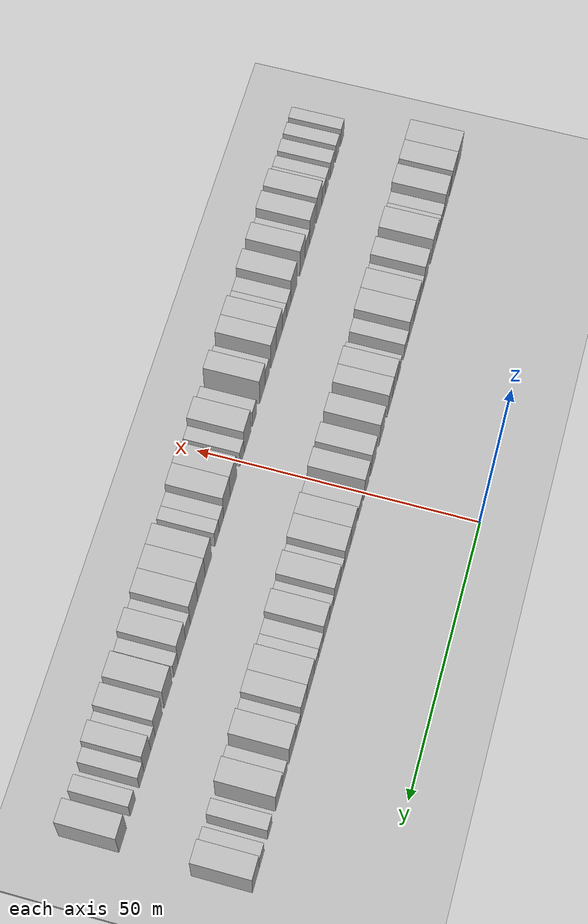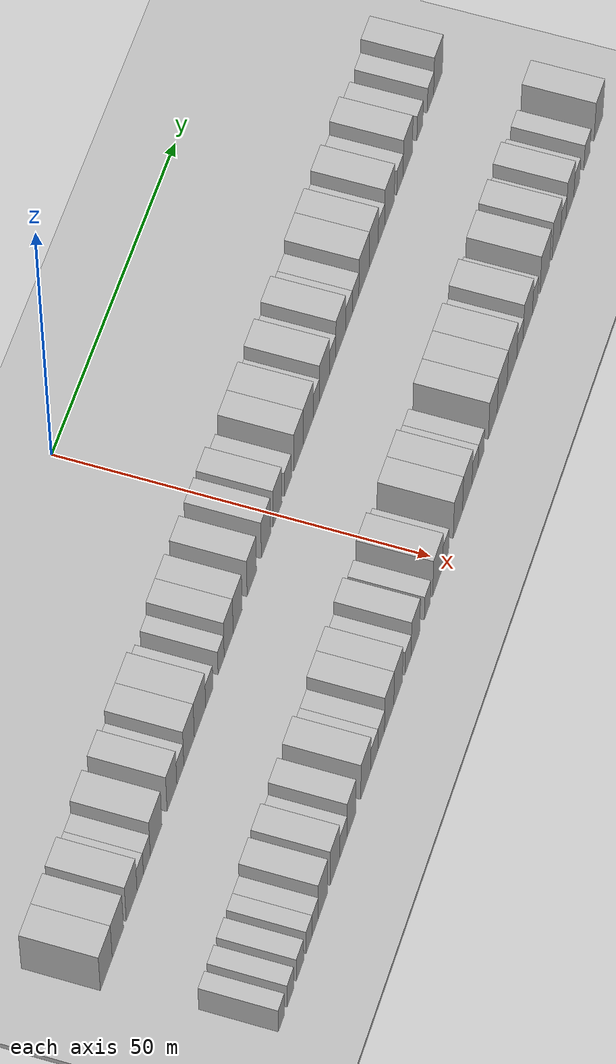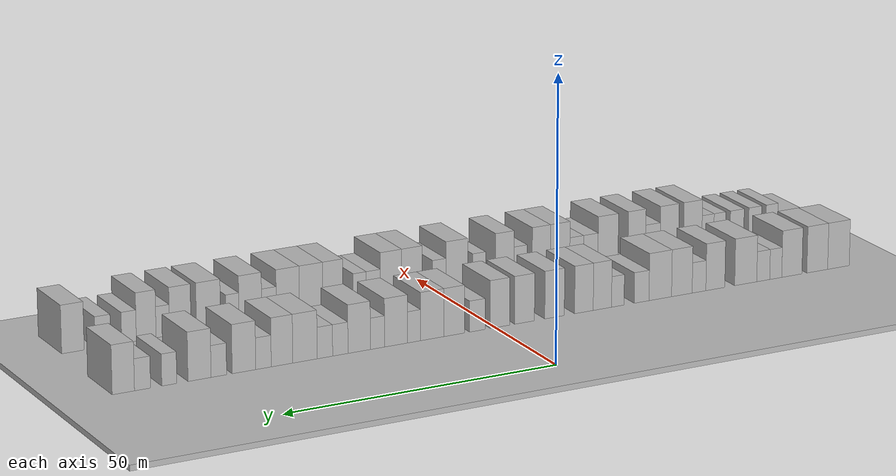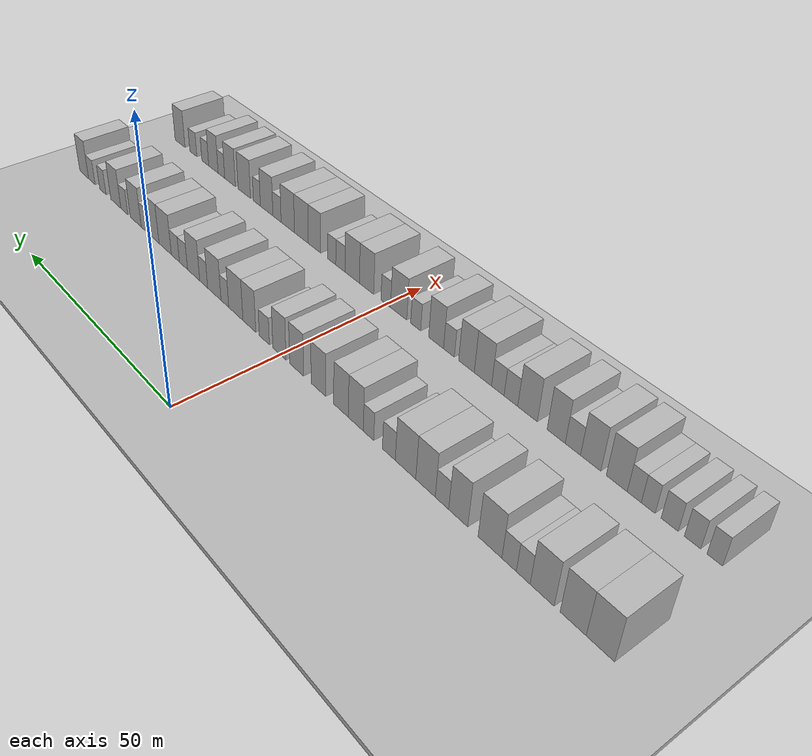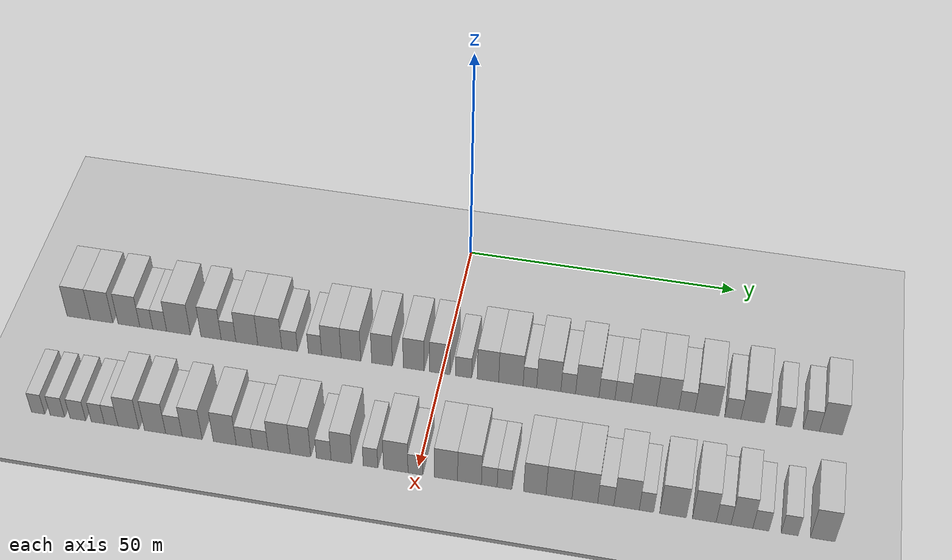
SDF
<sdf version="1.6">
 <world name="default">
  <include><name>ground_plane_1</name><uri>model://HANNAS_ground_plane</uri></include>
  <include>
   <name>ground_plane_2</name>
   <uri>model://HANNAS_ground_plane</uri>
   <pose>100 0 0  0 0 0</pose>
  </include>
  <model name="building_36">
   <static>1</static>
   <pose>25.0000 -67.8687 0 0.000000 0.000000 0.000000</pose>
   <link name="link">
    <pose>0 0 4.50 0 0 0</pose>
    <collision name="collision"><geometry><box><size>10.0000 4.4902 9.0000</size></box></geometry></collision>
    <visual name="visual">
     <cast_shadows>0</cast_shadows>
     <geometry><box><size>10.0000 4.4902 9.0000</size></box></geometry>
     <material>
      <script>
       <uri>model://HANNAS_wall/materials/scripts</uri>
       <uri>model://HANNAS_wall/materials/textures</uri>
       <name>vrc/HANNAS_wall</name>
      </script>
     </material>
    </visual>
   </link>
  </model>
  <model name="building_37">
   <static>1</static>
   <pose>25.0000 -63.4710 0 0.000000 0.000000 0.000000</pose>
   <link name="link">
    <pose>0 0 4.50 0 0 0</pose>
    <collision name="collision"><geometry><box><size>10.0000 4.3054 9.0000</size></box></geometry></collision>
    <visual name="visual">
     <cast_shadows>0</cast_shadows>
     <geometry><box><size>10.0000 4.3054 9.0000</size></box></geometry>
     <material>
      <script>
       <uri>model://HANNAS_wall/materials/scripts</uri>
       <uri>model://HANNAS_wall/materials/textures</uri>
       <name>vrc/HANNAS_wall</name>
      </script>
     </material>
    </visual>
   </link>
  </model>
  <model name="building_38">
   <static>1</static>
   <pose>25.0000 -58.2366 0 0.000000 0.000000 0.000000</pose>
   <link name="link">
    <pose>0 0 4.50 0 0 0</pose>
    <collision name="collision"><geometry><box><size>10.0000 4.1633 9.0000</size></box></geometry></collision>
    <visual name="visual">
     <cast_shadows>0</cast_shadows>
     <geometry><box><size>10.0000 4.1633 9.0000</size></box></geometry>
     <material>
      <script>
       <uri>model://HANNAS_wall/materials/scripts</uri>
       <uri>model://HANNAS_wall/materials/textures</uri>
       <name>vrc/HANNAS_wall</name>
      </script>
     </material>
    </visual>
   </link>
  </model>
  <model name="building_39">
   <static>1</static>
   <pose>25.0000 -54.9228 0 0.000000 0.000000 0.000000</pose>
   <link name="link">
    <pose>0 0 3.00 0 0 0</pose>
    <collision name="collision"><geometry><box><size>10.0000 2.4642 6.0000</size></box></geometry></collision>
    <visual name="visual">
     <cast_shadows>0</cast_shadows>
     <geometry><box><size>10.0000 2.4642 6.0000</size></box></geometry>
     <material>
      <script>
       <uri>model://HANNAS_wall/materials/scripts</uri>
       <uri>model://HANNAS_wall/materials/textures</uri>
       <name>vrc/HANNAS_wall</name>
      </script>
     </material>
    </visual>
   </link>
  </model>
  <model name="building_40">
   <static>1</static>
   <pose>25.0000 -52.3676 0 0.000000 0.000000 0.000000</pose>
   <link name="link">
    <pose>0 0 3.00 0 0 0</pose>
    <collision name="collision"><geometry><box><size>10.0000 2.6464 6.0000</size></box></geometry></collision>
    <visual name="visual">
     <cast_shadows>0</cast_shadows>
     <geometry><box><size>10.0000 2.6464 6.0000</size></box></geometry>
     <material>
      <script>
       <uri>model://HANNAS_wall/materials/scripts</uri>
       <uri>model://HANNAS_wall/materials/textures</uri>
       <name>vrc/HANNAS_wall</name>
      </script>
     </material>
    </visual>
   </link>
  </model>
  <model name="building_41">
   <static>1</static>
   <pose>25.0000 -48.7996 0 0.000000 0.000000 0.000000</pose>
   <link name="link">
    <pose>0 0 4.50 0 0 0</pose>
    <collision name="collision"><geometry><box><size>10.0000 4.4895 9.0000</size></box></geometry></collision>
    <visual name="visual">
     <cast_shadows>0</cast_shadows>
     <geometry><box><size>10.0000 4.4895 9.0000</size></box></geometry>
     <material>
      <script>
       <uri>model://HANNAS_wall/materials/scripts</uri>
       <uri>model://HANNAS_wall/materials/textures</uri>
       <name>vrc/HANNAS_wall</name>
      </script>
     </material>
    </visual>
   </link>
  </model>
  <model name="building_42">
   <static>1</static>
   <pose>25.0000 -42.6450 0 0.000000 0.000000 0.000000</pose>
   <link name="link">
    <pose>0 0 4.50 0 0 0</pose>
    <collision name="collision"><geometry><box><size>10.0000 3.8197 9.0000</size></box></geometry></collision>
    <visual name="visual">
     <cast_shadows>0</cast_shadows>
     <geometry><box><size>10.0000 3.8197 9.0000</size></box></geometry>
     <material>
      <script>
       <uri>model://HANNAS_wall/materials/scripts</uri>
       <uri>model://HANNAS_wall/materials/textures</uri>
       <name>vrc/HANNAS_wall</name>
      </script>
     </material>
    </visual>
   </link>
  </model>
  <model name="building_43">
   <static>1</static>
   <pose>25.0000 -39.3544 0 0.000000 0.000000 0.000000</pose>
   <link name="link">
    <pose>0 0 3.00 0 0 0</pose>
    <collision name="collision"><geometry><box><size>10.0000 2.7616 6.0000</size></box></geometry></collision>
    <visual name="visual">
     <cast_shadows>0</cast_shadows>
     <geometry><box><size>10.0000 2.7616 6.0000</size></box></geometry>
     <material>
      <script>
       <uri>model://HANNAS_wall/materials/scripts</uri>
       <uri>model://HANNAS_wall/materials/textures</uri>
       <name>vrc/HANNAS_wall</name>
      </script>
     </material>
    </visual>
   </link>
  </model>
  <model name="building_44">
   <static>1</static>
   <pose>25.0000 -35.9110 0 0.000000 0.000000 0.000000</pose>
   <link name="link">
    <pose>0 0 4.50 0 0 0</pose>
    <collision name="collision"><geometry><box><size>10.0000 4.1252 9.0000</size></box></geometry></collision>
    <visual name="visual">
     <cast_shadows>0</cast_shadows>
     <geometry><box><size>10.0000 4.1252 9.0000</size></box></geometry>
     <material>
      <script>
       <uri>model://HANNAS_wall/materials/scripts</uri>
       <uri>model://HANNAS_wall/materials/textures</uri>
       <name>vrc/HANNAS_wall</name>
      </script>
     </material>
    </visual>
   </link>
  </model>
  <model name="building_45">
   <static>1</static>
   <pose>25.0000 -31.6001 0 0.000000 0.000000 0.000000</pose>
   <link name="link">
    <pose>0 0 4.50 0 0 0</pose>
    <collision name="collision"><geometry><box><size>10.0000 4.4965 9.0000</size></box></geometry></collision>
    <visual name="visual">
     <cast_shadows>0</cast_shadows>
     <geometry><box><size>10.0000 4.4965 9.0000</size></box></geometry>
     <material>
      <script>
       <uri>model://HANNAS_wall/materials/scripts</uri>
       <uri>model://HANNAS_wall/materials/textures</uri>
       <name>vrc/HANNAS_wall</name>
      </script>
     </material>
    </visual>
   </link>
  </model>
  <model name="building_46">
   <static>1</static>
   <pose>25.0000 -27.8859 0 0.000000 0.000000 0.000000</pose>
   <link name="link">
    <pose>0 0 3.00 0 0 0</pose>
    <collision name="collision"><geometry><box><size>10.0000 2.9319 6.0000</size></box></geometry></collision>
    <visual name="visual">
     <cast_shadows>0</cast_shadows>
     <geometry><box><size>10.0000 2.9319 6.0000</size></box></geometry>
     <material>
      <script>
       <uri>model://HANNAS_wall/materials/scripts</uri>
       <uri>model://HANNAS_wall/materials/textures</uri>
       <name>vrc/HANNAS_wall</name>
      </script>
     </material>
    </visual>
   </link>
  </model>
  <model name="building_47">
   <static>1</static>
   <pose>25.0000 -23.1822 0 0.000000 0.000000 0.000000</pose>
   <link name="link">
    <pose>0 0 3.00 0 0 0</pose>
    <collision name="collision"><geometry><box><size>10.0000 2.4754 6.0000</size></box></geometry></collision>
    <visual name="visual">
     <cast_shadows>0</cast_shadows>
     <geometry><box><size>10.0000 2.4754 6.0000</size></box></geometry>
     <material>
      <script>
       <uri>model://HANNAS_wall/materials/scripts</uri>
       <uri>model://HANNAS_wall/materials/textures</uri>
       <name>vrc/HANNAS_wall</name>
      </script>
     </material>
    </visual>
   </link>
  </model>
  <model name="building_48">
   <static>1</static>
   <pose>25.0000 -20.1401 0 0.000000 0.000000 0.000000</pose>
   <link name="link">
    <pose>0 0 4.50 0 0 0</pose>
    <collision name="collision"><geometry><box><size>10.0000 3.6088 9.0000</size></box></geometry></collision>
    <visual name="visual">
     <cast_shadows>0</cast_shadows>
     <geometry><box><size>10.0000 3.6088 9.0000</size></box></geometry>
     <material>
      <script>
       <uri>model://HANNAS_wall/materials/scripts</uri>
       <uri>model://HANNAS_wall/materials/textures</uri>
       <name>vrc/HANNAS_wall</name>
      </script>
     </material>
    </visual>
   </link>
  </model>
  <model name="building_49">
   <static>1</static>
   <pose>25.0000 -16.5165 0 0.000000 0.000000 0.000000</pose>
   <link name="link">
    <pose>0 0 4.50 0 0 0</pose>
    <collision name="collision"><geometry><box><size>10.0000 3.6384 9.0000</size></box></geometry></collision>
    <visual name="visual">
     <cast_shadows>0</cast_shadows>
     <geometry><box><size>10.0000 3.6384 9.0000</size></box></geometry>
     <material>
      <script>
       <uri>model://HANNAS_wall/materials/scripts</uri>
       <uri>model://HANNAS_wall/materials/textures</uri>
       <name>vrc/HANNAS_wall</name>
      </script>
     </material>
    </visual>
   </link>
  </model>
  <model name="building_50">
   <static>1</static>
   <pose>25.0000 -10.7964 0 0.000000 0.000000 0.000000</pose>
   <link name="link">
    <pose>0 0 4.50 0 0 0</pose>
    <collision name="collision"><geometry><box><size>10.0000 3.8018 9.0000</size></box></geometry></collision>
    <visual name="visual">
     <cast_shadows>0</cast_shadows>
     <geometry><box><size>10.0000 3.8018 9.0000</size></box></geometry>
     <material>
      <script>
       <uri>model://HANNAS_wall/materials/scripts</uri>
       <uri>model://HANNAS_wall/materials/textures</uri>
       <name>vrc/HANNAS_wall</name>
      </script>
     </material>
    </visual>
   </link>
  </model>
  <model name="building_51">
   <static>1</static>
   <pose>25.0000 -4.9890 0 0.000000 0.000000 0.000000</pose>
   <link name="link">
    <pose>0 0 4.50 0 0 0</pose>
    <collision name="collision"><geometry><box><size>10.0000 3.8128 9.0000</size></box></geometry></collision>
    <visual name="visual">
     <cast_shadows>0</cast_shadows>
     <geometry><box><size>10.0000 3.8128 9.0000</size></box></geometry>
     <material>
      <script>
       <uri>model://HANNAS_wall/materials/scripts</uri>
       <uri>model://HANNAS_wall/materials/textures</uri>
       <name>vrc/HANNAS_wall</name>
      </script>
     </material>
    </visual>
   </link>
  </model>
  <model name="building_52">
   <static>1</static>
   <pose>25.0000 -0.2341 0 0.000000 0.000000 0.000000</pose>
   <link name="link">
    <pose>0 0 4.50 0 0 0</pose>
    <collision name="collision"><geometry><box><size>10.0000 3.6971 9.0000</size></box></geometry></collision>
    <visual name="visual">
     <cast_shadows>0</cast_shadows>
     <geometry><box><size>10.0000 3.6971 9.0000</size></box></geometry>
     <material>
      <script>
       <uri>model://HANNAS_wall/materials/scripts</uri>
       <uri>model://HANNAS_wall/materials/textures</uri>
       <name>vrc/HANNAS_wall</name>
      </script>
     </material>
    </visual>
   </link>
  </model>
  <model name="building_53">
   <static>1</static>
   <pose>25.0000 4.0832 0 0.000000 0.000000 0.000000</pose>
   <link name="link">
    <pose>0 0 3.00 0 0 0</pose>
    <collision name="collision"><geometry><box><size>10.0000 2.9375 6.0000</size></box></geometry></collision>
    <visual name="visual">
     <cast_shadows>0</cast_shadows>
     <geometry><box><size>10.0000 2.9375 6.0000</size></box></geometry>
     <material>
      <script>
       <uri>model://HANNAS_wall/materials/scripts</uri>
       <uri>model://HANNAS_wall/materials/textures</uri>
       <name>vrc/HANNAS_wall</name>
      </script>
     </material>
    </visual>
   </link>
  </model>
  <model name="building_54">
   <static>1</static>
   <pose>25.0000 8.4924 0 0.000000 0.000000 0.000000</pose>
   <link name="link">
    <pose>0 0 4.50 0 0 0</pose>
    <collision name="collision"><geometry><box><size>10.0000 3.8807 9.0000</size></box></geometry></collision>
    <visual name="visual">
     <cast_shadows>0</cast_shadows>
     <geometry><box><size>10.0000 3.8807 9.0000</size></box></geometry>
     <material>
      <script>
       <uri>model://HANNAS_wall/materials/scripts</uri>
       <uri>model://HANNAS_wall/materials/textures</uri>
       <name>vrc/HANNAS_wall</name>
      </script>
     </material>
    </visual>
   </link>
  </model>
  <model name="building_55">
   <static>1</static>
   <pose>25.0000 12.6406 0 0.000000 0.000000 0.000000</pose>
   <link name="link">
    <pose>0 0 4.50 0 0 0</pose>
    <collision name="collision"><geometry><box><size>10.0000 4.4157 9.0000</size></box></geometry></collision>
    <visual name="visual">
     <cast_shadows>0</cast_shadows>
     <geometry><box><size>10.0000 4.4157 9.0000</size></box></geometry>
     <material>
      <script>
       <uri>model://HANNAS_wall/materials/scripts</uri>
       <uri>model://HANNAS_wall/materials/textures</uri>
       <name>vrc/HANNAS_wall</name>
      </script>
     </material>
    </visual>
   </link>
  </model>
  <model name="building_56">
   <static>1</static>
   <pose>25.0000 16.0649 0 0.000000 0.000000 0.000000</pose>
   <link name="link">
    <pose>0 0 3.00 0 0 0</pose>
    <collision name="collision"><geometry><box><size>10.0000 2.4328 6.0000</size></box></geometry></collision>
    <visual name="visual">
     <cast_shadows>0</cast_shadows>
     <geometry><box><size>10.0000 2.4328 6.0000</size></box></geometry>
     <material>
      <script>
       <uri>model://HANNAS_wall/materials/scripts</uri>
       <uri>model://HANNAS_wall/materials/textures</uri>
       <name>vrc/HANNAS_wall</name>
      </script>
     </material>
    </visual>
   </link>
  </model>
  <model name="building_57">
   <static>1</static>
   <pose>25.0000 19.4465 0 0.000000 0.000000 0.000000</pose>
   <link name="link">
    <pose>0 0 4.50 0 0 0</pose>
    <collision name="collision"><geometry><box><size>10.0000 4.3304 9.0000</size></box></geometry></collision>
    <visual name="visual">
     <cast_shadows>0</cast_shadows>
     <geometry><box><size>10.0000 4.3304 9.0000</size></box></geometry>
     <material>
      <script>
       <uri>model://HANNAS_wall/materials/scripts</uri>
       <uri>model://HANNAS_wall/materials/textures</uri>
       <name>vrc/HANNAS_wall</name>
      </script>
     </material>
    </visual>
   </link>
  </model>
  <model name="building_58">
   <static>1</static>
   <pose>25.0000 22.9287 0 0.000000 0.000000 0.000000</pose>
   <link name="link">
    <pose>0 0 3.00 0 0 0</pose>
    <collision name="collision"><geometry><box><size>10.0000 2.6340 6.0000</size></box></geometry></collision>
    <visual name="visual">
     <cast_shadows>0</cast_shadows>
     <geometry><box><size>10.0000 2.6340 6.0000</size></box></geometry>
     <material>
      <script>
       <uri>model://HANNAS_wall/materials/scripts</uri>
       <uri>model://HANNAS_wall/materials/textures</uri>
       <name>vrc/HANNAS_wall</name>
      </script>
     </material>
    </visual>
   </link>
  </model>
  <model name="building_59">
   <static>1</static>
   <pose>25.0000 26.3239 0 0.000000 0.000000 0.000000</pose>
   <link name="link">
    <pose>0 0 4.50 0 0 0</pose>
    <collision name="collision"><geometry><box><size>10.0000 4.1565 9.0000</size></box></geometry></collision>
    <visual name="visual">
     <cast_shadows>0</cast_shadows>
     <geometry><box><size>10.0000 4.1565 9.0000</size></box></geometry>
     <material>
      <script>
       <uri>model://HANNAS_wall/materials/scripts</uri>
       <uri>model://HANNAS_wall/materials/textures</uri>
       <name>vrc/HANNAS_wall</name>
      </script>
     </material>
    </visual>
   </link>
  </model>
  <model name="building_60">
   <static>1</static>
   <pose>25.0000 29.8214 0 0.000000 0.000000 0.000000</pose>
   <link name="link">
    <pose>0 0 3.00 0 0 0</pose>
    <collision name="collision"><geometry><box><size>10.0000 2.8384 6.0000</size></box></geometry></collision>
    <visual name="visual">
     <cast_shadows>0</cast_shadows>
     <geometry><box><size>10.0000 2.8384 6.0000</size></box></geometry>
     <material>
      <script>
       <uri>model://HANNAS_wall/materials/scripts</uri>
       <uri>model://HANNAS_wall/materials/textures</uri>
       <name>vrc/HANNAS_wall</name>
      </script>
     </material>
    </visual>
   </link>
  </model>
  <model name="building_61">
   <static>1</static>
   <pose>25.0000 32.6655 0 0.000000 0.000000 0.000000</pose>
   <link name="link">
    <pose>0 0 3.00 0 0 0</pose>
    <collision name="collision"><geometry><box><size>10.0000 2.8499 6.0000</size></box></geometry></collision>
    <visual name="visual">
     <cast_shadows>0</cast_shadows>
     <geometry><box><size>10.0000 2.8499 6.0000</size></box></geometry>
     <material>
      <script>
       <uri>model://HANNAS_wall/materials/scripts</uri>
       <uri>model://HANNAS_wall/materials/textures</uri>
       <name>vrc/HANNAS_wall</name>
      </script>
     </material>
    </visual>
   </link>
  </model>
  <model name="building_62">
   <static>1</static>
   <pose>25.0000 36.3310 0 0.000000 0.000000 0.000000</pose>
   <link name="link">
    <pose>0 0 4.50 0 0 0</pose>
    <collision name="collision"><geometry><box><size>10.0000 4.4812 9.0000</size></box></geometry></collision>
    <visual name="visual">
     <cast_shadows>0</cast_shadows>
     <geometry><box><size>10.0000 4.4812 9.0000</size></box></geometry>
     <material>
      <script>
       <uri>model://HANNAS_wall/materials/scripts</uri>
       <uri>model://HANNAS_wall/materials/textures</uri>
       <name>vrc/HANNAS_wall</name>
      </script>
     </material>
    </visual>
   </link>
  </model>
  <model name="building_63">
   <static>1</static>
   <pose>25.0000 40.5339 0 0.000000 0.000000 0.000000</pose>
   <link name="link">
    <pose>0 0 4.50 0 0 0</pose>
    <collision name="collision"><geometry><box><size>10.0000 3.9246 9.0000</size></box></geometry></collision>
    <visual name="visual">
     <cast_shadows>0</cast_shadows>
     <geometry><box><size>10.0000 3.9246 9.0000</size></box></geometry>
     <material>
      <script>
       <uri>model://HANNAS_wall/materials/scripts</uri>
       <uri>model://HANNAS_wall/materials/textures</uri>
       <name>vrc/HANNAS_wall</name>
      </script>
     </material>
    </visual>
   </link>
  </model>
  <model name="building_64">
   <static>1</static>
   <pose>25.0000 43.9046 0 0.000000 0.000000 0.000000</pose>
   <link name="link">
    <pose>0 0 3.00 0 0 0</pose>
    <collision name="collision"><geometry><box><size>10.0000 2.8168 6.0000</size></box></geometry></collision>
    <visual name="visual">
     <cast_shadows>0</cast_shadows>
     <geometry><box><size>10.0000 2.8168 6.0000</size></box></geometry>
     <material>
      <script>
       <uri>model://HANNAS_wall/materials/scripts</uri>
       <uri>model://HANNAS_wall/materials/textures</uri>
       <name>vrc/HANNAS_wall</name>
      </script>
     </material>
    </visual>
   </link>
  </model>
  <model name="building_65">
   <static>1</static>
   <pose>25.0000 47.4456 0 0.000000 0.000000 0.000000</pose>
   <link name="link">
    <pose>0 0 4.50 0 0 0</pose>
    <collision name="collision"><geometry><box><size>10.0000 4.2652 9.0000</size></box></geometry></collision>
    <visual name="visual">
     <cast_shadows>0</cast_shadows>
     <geometry><box><size>10.0000 4.2652 9.0000</size></box></geometry>
     <material>
      <script>
       <uri>model://HANNAS_wall/materials/scripts</uri>
       <uri>model://HANNAS_wall/materials/textures</uri>
       <name>vrc/HANNAS_wall</name>
      </script>
     </material>
    </visual>
   </link>
  </model>
  <model name="building_66">
   <static>1</static>
   <pose>25.0000 51.9770 0 0.000000 0.000000 0.000000</pose>
   <link name="link">
    <pose>0 0 3.00 0 0 0</pose>
    <collision name="collision"><geometry><box><size>10.0000 2.7976 6.0000</size></box></geometry></collision>
    <visual name="visual">
     <cast_shadows>0</cast_shadows>
     <geometry><box><size>10.0000 2.7976 6.0000</size></box></geometry>
     <material>
      <script>
       <uri>model://HANNAS_wall/materials/scripts</uri>
       <uri>model://HANNAS_wall/materials/textures</uri>
       <name>vrc/HANNAS_wall</name>
      </script>
     </material>
    </visual>
   </link>
  </model>
  <model name="building_67">
   <static>1</static>
   <pose>25.0000 55.4416 0 0.000000 0.000000 0.000000</pose>
   <link name="link">
    <pose>0 0 4.50 0 0 0</pose>
    <collision name="collision"><geometry><box><size>10.0000 4.1315 9.0000</size></box></geometry></collision>
    <visual name="visual">
     <cast_shadows>0</cast_shadows>
     <geometry><box><size>10.0000 4.1315 9.0000</size></box></geometry>
     <material>
      <script>
       <uri>model://HANNAS_wall/materials/scripts</uri>
       <uri>model://HANNAS_wall/materials/textures</uri>
       <name>vrc/HANNAS_wall</name>
      </script>
     </material>
    </visual>
   </link>
  </model>
  <model name="building_68">
   <static>1</static>
   <pose>25.0000 60.8428 0 0.000000 0.000000 0.000000</pose>
   <link name="link">
    <pose>0 0 3.00 0 0 0</pose>
    <collision name="collision"><geometry><box><size>10.0000 2.6708 6.0000</size></box></geometry></collision>
    <visual name="visual">
     <cast_shadows>0</cast_shadows>
     <geometry><box><size>10.0000 2.6708 6.0000</size></box></geometry>
     <material>
      <script>
       <uri>model://HANNAS_wall/materials/scripts</uri>
       <uri>model://HANNAS_wall/materials/textures</uri>
       <name>vrc/HANNAS_wall</name>
      </script>
     </material>
    </visual>
   </link>
  </model>
  <model name="building_69">
   <static>1</static>
   <pose>25.0000 65.5975 0 0.000000 0.000000 0.000000</pose>
   <link name="link">
    <pose>0 0 3.00 0 0 0</pose>
    <collision name="collision"><geometry><box><size>10.0000 2.8386 6.0000</size></box></geometry></collision>
    <visual name="visual">
     <cast_shadows>0</cast_shadows>
     <geometry><box><size>10.0000 2.8386 6.0000</size></box></geometry>
     <material>
      <script>
       <uri>model://HANNAS_wall/materials/scripts</uri>
       <uri>model://HANNAS_wall/materials/textures</uri>
       <name>vrc/HANNAS_wall</name>
      </script>
     </material>
    </visual>
   </link>
  </model>
  <model name="building_70">
   <static>1</static>
   <pose>25.0000 68.9816 0 0.000000 0.000000 0.000000</pose>
   <link name="link">
    <pose>0 0 4.50 0 0 0</pose>
    <collision name="collision"><geometry><box><size>10.0000 3.9295 9.0000</size></box></geometry></collision>
    <visual name="visual">
     <cast_shadows>0</cast_shadows>
     <geometry><box><size>10.0000 3.9295 9.0000</size></box></geometry>
     <material>
      <script>
       <uri>model://HANNAS_wall/materials/scripts</uri>
       <uri>model://HANNAS_wall/materials/textures</uri>
       <name>vrc/HANNAS_wall</name>
      </script>
     </material>
    </visual>
   </link>
  </model>
  <model name="building_142">
   <static>1</static>
   <pose>47.0000 -67.7369 0 0.000000 0.000000 0.000000</pose>
   <link name="link">
    <pose>0 0 3.00 0 0 0</pose>
    <collision name="collision"><geometry><box><size>10.0000 2.4521 6.0000</size></box></geometry></collision>
    <visual name="visual">
     <cast_shadows>0</cast_shadows>
     <geometry><box><size>10.0000 2.4521 6.0000</size></box></geometry>
     <material>
      <script>
       <uri>model://HANNAS_wall/materials/scripts</uri>
       <uri>model://HANNAS_wall/materials/textures</uri>
       <name>vrc/HANNAS_wall</name>
      </script>
     </material>
    </visual>
   </link>
  </model>
  <model name="building_143">
   <static>1</static>
   <pose>47.0000 -64.1834 0 0.000000 0.000000 0.000000</pose>
   <link name="link">
    <pose>0 0 3.00 0 0 0</pose>
    <collision name="collision"><geometry><box><size>10.0000 2.6549 6.0000</size></box></geometry></collision>
    <visual name="visual">
     <cast_shadows>0</cast_shadows>
     <geometry><box><size>10.0000 2.6549 6.0000</size></box></geometry>
     <material>
      <script>
       <uri>model://HANNAS_wall/materials/scripts</uri>
       <uri>model://HANNAS_wall/materials/textures</uri>
       <name>vrc/HANNAS_wall</name>
      </script>
     </material>
    </visual>
   </link>
  </model>
  <model name="building_144">
   <static>1</static>
   <pose>47.0000 -60.4204 0 0.000000 0.000000 0.000000</pose>
   <link name="link">
    <pose>0 0 3.00 0 0 0</pose>
    <collision name="collision"><geometry><box><size>10.0000 2.8710 6.0000</size></box></geometry></collision>
    <visual name="visual">
     <cast_shadows>0</cast_shadows>
     <geometry><box><size>10.0000 2.8710 6.0000</size></box></geometry>
     <material>
      <script>
       <uri>model://HANNAS_wall/materials/scripts</uri>
       <uri>model://HANNAS_wall/materials/textures</uri>
       <name>vrc/HANNAS_wall</name>
      </script>
     </material>
    </visual>
   </link>
  </model>
  <model name="building_145">
   <static>1</static>
   <pose>47.0000 -56.7845 0 0.000000 0.000000 0.000000</pose>
   <link name="link">
    <pose>0 0 3.00 0 0 0</pose>
    <collision name="collision"><geometry><box><size>10.0000 2.4008 6.0000</size></box></geometry></collision>
    <visual name="visual">
     <cast_shadows>0</cast_shadows>
     <geometry><box><size>10.0000 2.4008 6.0000</size></box></geometry>
     <material>
      <script>
       <uri>model://HANNAS_wall/materials/scripts</uri>
       <uri>model://HANNAS_wall/materials/textures</uri>
       <name>vrc/HANNAS_wall</name>
      </script>
     </material>
    </visual>
   </link>
  </model>
  <model name="building_146">
   <static>1</static>
   <pose>47.0000 -54.3425 0 0.000000 0.000000 0.000000</pose>
   <link name="link">
    <pose>0 0 3.00 0 0 0</pose>
    <collision name="collision"><geometry><box><size>10.0000 2.4832 6.0000</size></box></geometry></collision>
    <visual name="visual">
     <cast_shadows>0</cast_shadows>
     <geometry><box><size>10.0000 2.4832 6.0000</size></box></geometry>
     <material>
      <script>
       <uri>model://HANNAS_wall/materials/scripts</uri>
       <uri>model://HANNAS_wall/materials/textures</uri>
       <name>vrc/HANNAS_wall</name>
      </script>
     </material>
    </visual>
   </link>
  </model>
  <model name="building_147">
   <static>1</static>
   <pose>47.0000 -51.2014 0 0.000000 0.000000 0.000000</pose>
   <link name="link">
    <pose>0 0 4.50 0 0 0</pose>
    <collision name="collision"><geometry><box><size>10.0000 3.7991 9.0000</size></box></geometry></collision>
    <visual name="visual">
     <cast_shadows>0</cast_shadows>
     <geometry><box><size>10.0000 3.7991 9.0000</size></box></geometry>
     <material>
      <script>
       <uri>model://HANNAS_wall/materials/scripts</uri>
       <uri>model://HANNAS_wall/materials/textures</uri>
       <name>vrc/HANNAS_wall</name>
      </script>
     </material>
    </visual>
   </link>
  </model>
  <model name="building_148">
   <static>1</static>
   <pose>47.0000 -46.3826 0 0.000000 0.000000 0.000000</pose>
   <link name="link">
    <pose>0 0 4.50 0 0 0</pose>
    <collision name="collision"><geometry><box><size>10.0000 3.8384 9.0000</size></box></geometry></collision>
    <visual name="visual">
     <cast_shadows>0</cast_shadows>
     <geometry><box><size>10.0000 3.8384 9.0000</size></box></geometry>
     <material>
      <script>
       <uri>model://HANNAS_wall/materials/scripts</uri>
       <uri>model://HANNAS_wall/materials/textures</uri>
       <name>vrc/HANNAS_wall</name>
      </script>
     </material>
    </visual>
   </link>
  </model>
  <model name="building_149">
   <static>1</static>
   <pose>47.0000 -42.9770 0 0.000000 0.000000 0.000000</pose>
   <link name="link">
    <pose>0 0 3.00 0 0 0</pose>
    <collision name="collision"><geometry><box><size>10.0000 2.9728 6.0000</size></box></geometry></collision>
    <visual name="visual">
     <cast_shadows>0</cast_shadows>
     <geometry><box><size>10.0000 2.9728 6.0000</size></box></geometry>
     <material>
      <script>
       <uri>model://HANNAS_wall/materials/scripts</uri>
       <uri>model://HANNAS_wall/materials/textures</uri>
       <name>vrc/HANNAS_wall</name>
      </script>
     </material>
    </visual>
   </link>
  </model>
  <model name="building_150">
   <static>1</static>
   <pose>47.0000 -39.6873 0 0.000000 0.000000 0.000000</pose>
   <link name="link">
    <pose>0 0 4.50 0 0 0</pose>
    <collision name="collision"><geometry><box><size>10.0000 3.6066 9.0000</size></box></geometry></collision>
    <visual name="visual">
     <cast_shadows>0</cast_shadows>
     <geometry><box><size>10.0000 3.6066 9.0000</size></box></geometry>
     <material>
      <script>
       <uri>model://HANNAS_wall/materials/scripts</uri>
       <uri>model://HANNAS_wall/materials/textures</uri>
       <name>vrc/HANNAS_wall</name>
      </script>
     </material>
    </visual>
   </link>
  </model>
  <model name="building_151">
   <static>1</static>
   <pose>47.0000 -33.8355 0 0.000000 0.000000 0.000000</pose>
   <link name="link">
    <pose>0 0 4.50 0 0 0</pose>
    <collision name="collision"><geometry><box><size>10.0000 4.0971 9.0000</size></box></geometry></collision>
    <visual name="visual">
     <cast_shadows>0</cast_shadows>
     <geometry><box><size>10.0000 4.0971 9.0000</size></box></geometry>
     <material>
      <script>
       <uri>model://HANNAS_wall/materials/scripts</uri>
       <uri>model://HANNAS_wall/materials/textures</uri>
       <name>vrc/HANNAS_wall</name>
      </script>
     </material>
    </visual>
   </link>
  </model>
  <model name="building_152">
   <static>1</static>
   <pose>47.0000 -30.3197 0 0.000000 0.000000 0.000000</pose>
   <link name="link">
    <pose>0 0 3.00 0 0 0</pose>
    <collision name="collision"><geometry><box><size>10.0000 2.9346 6.0000</size></box></geometry></collision>
    <visual name="visual">
     <cast_shadows>0</cast_shadows>
     <geometry><box><size>10.0000 2.9346 6.0000</size></box></geometry>
     <material>
      <script>
       <uri>model://HANNAS_wall/materials/scripts</uri>
       <uri>model://HANNAS_wall/materials/textures</uri>
       <name>vrc/HANNAS_wall</name>
      </script>
     </material>
    </visual>
   </link>
  </model>
  <model name="building_153">
   <static>1</static>
   <pose>47.0000 -27.4698 0 0.000000 0.000000 0.000000</pose>
   <link name="link">
    <pose>0 0 3.00 0 0 0</pose>
    <collision name="collision"><geometry><box><size>10.0000 2.7652 6.0000</size></box></geometry></collision>
    <visual name="visual">
     <cast_shadows>0</cast_shadows>
     <geometry><box><size>10.0000 2.7652 6.0000</size></box></geometry>
     <material>
      <script>
       <uri>model://HANNAS_wall/materials/scripts</uri>
       <uri>model://HANNAS_wall/materials/textures</uri>
       <name>vrc/HANNAS_wall</name>
      </script>
     </material>
    </visual>
   </link>
  </model>
  <model name="building_154">
   <static>1</static>
   <pose>47.0000 -24.1375 0 0.000000 0.000000 0.000000</pose>
   <link name="link">
    <pose>0 0 4.50 0 0 0</pose>
    <collision name="collision"><geometry><box><size>10.0000 3.8993 9.0000</size></box></geometry></collision>
    <visual name="visual">
     <cast_shadows>0</cast_shadows>
     <geometry><box><size>10.0000 3.8993 9.0000</size></box></geometry>
     <material>
      <script>
       <uri>model://HANNAS_wall/materials/scripts</uri>
       <uri>model://HANNAS_wall/materials/textures</uri>
       <name>vrc/HANNAS_wall</name>
      </script>
     </material>
    </visual>
   </link>
  </model>
  <model name="building_155">
   <static>1</static>
   <pose>47.0000 -20.3730 0 0.000000 0.000000 0.000000</pose>
   <link name="link">
    <pose>0 0 4.50 0 0 0</pose>
    <collision name="collision"><geometry><box><size>10.0000 3.6299 9.0000</size></box></geometry></collision>
    <visual name="visual">
     <cast_shadows>0</cast_shadows>
     <geometry><box><size>10.0000 3.6299 9.0000</size></box></geometry>
     <material>
      <script>
       <uri>model://HANNAS_wall/materials/scripts</uri>
       <uri>model://HANNAS_wall/materials/textures</uri>
       <name>vrc/HANNAS_wall</name>
      </script>
     </material>
    </visual>
   </link>
  </model>
  <model name="building_156">
   <static>1</static>
   <pose>47.0000 -16.2571 0 0.000000 0.000000 0.000000</pose>
   <link name="link">
    <pose>0 0 3.00 0 0 0</pose>
    <collision name="collision"><geometry><box><size>10.0000 2.6019 6.0000</size></box></geometry></collision>
    <visual name="visual">
     <cast_shadows>0</cast_shadows>
     <geometry><box><size>10.0000 2.6019 6.0000</size></box></geometry>
     <material>
      <script>
       <uri>model://HANNAS_wall/materials/scripts</uri>
       <uri>model://HANNAS_wall/materials/textures</uri>
       <name>vrc/HANNAS_wall</name>
      </script>
     </material>
    </visual>
   </link>
  </model>
  <model name="building_157">
   <static>1</static>
   <pose>47.0000 -13.1342 0 0.000000 0.000000 0.000000</pose>
   <link name="link">
    <pose>0 0 4.50 0 0 0</pose>
    <collision name="collision"><geometry><box><size>10.0000 3.6439 9.0000</size></box></geometry></collision>
    <visual name="visual">
     <cast_shadows>0</cast_shadows>
     <geometry><box><size>10.0000 3.6439 9.0000</size></box></geometry>
     <material>
      <script>
       <uri>model://HANNAS_wall/materials/scripts</uri>
       <uri>model://HANNAS_wall/materials/textures</uri>
       <name>vrc/HANNAS_wall</name>
      </script>
     </material>
    </visual>
   </link>
  </model>
  <model name="building_158">
   <static>1</static>
   <pose>47.0000 -8.0393 0 0.000000 0.000000 0.000000</pose>
   <link name="link">
    <pose>0 0 3.00 0 0 0</pose>
    <collision name="collision"><geometry><box><size>10.0000 2.5459 6.0000</size></box></geometry></collision>
    <visual name="visual">
     <cast_shadows>0</cast_shadows>
     <geometry><box><size>10.0000 2.5459 6.0000</size></box></geometry>
     <material>
      <script>
       <uri>model://HANNAS_wall/materials/scripts</uri>
       <uri>model://HANNAS_wall/materials/textures</uri>
       <name>vrc/HANNAS_wall</name>
      </script>
     </material>
    </visual>
   </link>
  </model>
  <model name="building_159">
   <static>1</static>
   <pose>47.0000 -3.6386 0 0.000000 0.000000 0.000000</pose>
   <link name="link">
    <pose>0 0 4.50 0 0 0</pose>
    <collision name="collision"><geometry><box><size>10.0000 4.2554 9.0000</size></box></geometry></collision>
    <visual name="visual">
     <cast_shadows>0</cast_shadows>
     <geometry><box><size>10.0000 4.2554 9.0000</size></box></geometry>
     <material>
      <script>
       <uri>model://HANNAS_wall/materials/scripts</uri>
       <uri>model://HANNAS_wall/materials/textures</uri>
       <name>vrc/HANNAS_wall</name>
      </script>
     </material>
    </visual>
   </link>
  </model>
  <model name="building_160">
   <static>1</static>
   <pose>47.0000 -0.2160 0 0.000000 0.000000 0.000000</pose>
   <link name="link">
    <pose>0 0 3.00 0 0 0</pose>
    <collision name="collision"><geometry><box><size>10.0000 2.5899 6.0000</size></box></geometry></collision>
    <visual name="visual">
     <cast_shadows>0</cast_shadows>
     <geometry><box><size>10.0000 2.5899 6.0000</size></box></geometry>
     <material>
      <script>
       <uri>model://HANNAS_wall/materials/scripts</uri>
       <uri>model://HANNAS_wall/materials/textures</uri>
       <name>vrc/HANNAS_wall</name>
      </script>
     </material>
    </visual>
   </link>
  </model>
  <model name="building_161">
   <static>1</static>
   <pose>47.0000 5.0765 0 0.000000 0.000000 0.000000</pose>
   <link name="link">
    <pose>0 0 4.50 0 0 0</pose>
    <collision name="collision"><geometry><box><size>10.0000 3.9951 9.0000</size></box></geometry></collision>
    <visual name="visual">
     <cast_shadows>0</cast_shadows>
     <geometry><box><size>10.0000 3.9951 9.0000</size></box></geometry>
     <material>
      <script>
       <uri>model://HANNAS_wall/materials/scripts</uri>
       <uri>model://HANNAS_wall/materials/textures</uri>
       <name>vrc/HANNAS_wall</name>
      </script>
     </material>
    </visual>
   </link>
  </model>
  <model name="building_162">
   <static>1</static>
   <pose>47.0000 9.1333 0 0.000000 0.000000 0.000000</pose>
   <link name="link">
    <pose>0 0 4.50 0 0 0</pose>
    <collision name="collision"><geometry><box><size>10.0000 4.1185 9.0000</size></box></geometry></collision>
    <visual name="visual">
     <cast_shadows>0</cast_shadows>
     <geometry><box><size>10.0000 4.1185 9.0000</size></box></geometry>
     <material>
      <script>
       <uri>model://HANNAS_wall/materials/scripts</uri>
       <uri>model://HANNAS_wall/materials/textures</uri>
       <name>vrc/HANNAS_wall</name>
      </script>
     </material>
    </visual>
   </link>
  </model>
  <model name="building_163">
   <static>1</static>
   <pose>47.0000 12.5438 0 0.000000 0.000000 0.000000</pose>
   <link name="link">
    <pose>0 0 3.00 0 0 0</pose>
    <collision name="collision"><geometry><box><size>10.0000 2.7026 6.0000</size></box></geometry></collision>
    <visual name="visual">
     <cast_shadows>0</cast_shadows>
     <geometry><box><size>10.0000 2.7026 6.0000</size></box></geometry>
     <material>
      <script>
       <uri>model://HANNAS_wall/materials/scripts</uri>
       <uri>model://HANNAS_wall/materials/textures</uri>
       <name>vrc/HANNAS_wall</name>
      </script>
     </material>
    </visual>
   </link>
  </model>
  <model name="building_164">
   <static>1</static>
   <pose>47.0000 15.1546 0 0.000000 0.000000 0.000000</pose>
   <link name="link">
    <pose>0 0 3.00 0 0 0</pose>
    <collision name="collision"><geometry><box><size>10.0000 2.5189 6.0000</size></box></geometry></collision>
    <visual name="visual">
     <cast_shadows>0</cast_shadows>
     <geometry><box><size>10.0000 2.5189 6.0000</size></box></geometry>
     <material>
      <script>
       <uri>model://HANNAS_wall/materials/scripts</uri>
       <uri>model://HANNAS_wall/materials/textures</uri>
       <name>vrc/HANNAS_wall</name>
      </script>
     </material>
    </visual>
   </link>
  </model>
  <model name="building_165">
   <static>1</static>
   <pose>47.0000 20.3296 0 0.000000 0.000000 0.000000</pose>
   <link name="link">
    <pose>0 0 4.50 0 0 0</pose>
    <collision name="collision"><geometry><box><size>10.0000 3.8311 9.0000</size></box></geometry></collision>
    <visual name="visual">
     <cast_shadows>0</cast_shadows>
     <geometry><box><size>10.0000 3.8311 9.0000</size></box></geometry>
     <material>
      <script>
       <uri>model://HANNAS_wall/materials/scripts</uri>
       <uri>model://HANNAS_wall/materials/textures</uri>
       <name>vrc/HANNAS_wall</name>
      </script>
     </material>
    </visual>
   </link>
  </model>
  <model name="building_166">
   <static>1</static>
   <pose>47.0000 24.4531 0 0.000000 0.000000 0.000000</pose>
   <link name="link">
    <pose>0 0 4.50 0 0 0</pose>
    <collision name="collision"><geometry><box><size>10.0000 4.4158 9.0000</size></box></geometry></collision>
    <visual name="visual">
     <cast_shadows>0</cast_shadows>
     <geometry><box><size>10.0000 4.4158 9.0000</size></box></geometry>
     <material>
      <script>
       <uri>model://HANNAS_wall/materials/scripts</uri>
       <uri>model://HANNAS_wall/materials/textures</uri>
       <name>vrc/HANNAS_wall</name>
      </script>
     </material>
    </visual>
   </link>
  </model>
  <model name="building_167">
   <static>1</static>
   <pose>47.0000 28.8377 0 0.000000 0.000000 0.000000</pose>
   <link name="link">
    <pose>0 0 4.50 0 0 0</pose>
    <collision name="collision"><geometry><box><size>10.0000 4.3535 9.0000</size></box></geometry></collision>
    <visual name="visual">
     <cast_shadows>0</cast_shadows>
     <geometry><box><size>10.0000 4.3535 9.0000</size></box></geometry>
     <material>
      <script>
       <uri>model://HANNAS_wall/materials/scripts</uri>
       <uri>model://HANNAS_wall/materials/textures</uri>
       <name>vrc/HANNAS_wall</name>
      </script>
     </material>
    </visual>
   </link>
  </model>
  <model name="building_168">
   <static>1</static>
   <pose>47.0000 32.3892 0 0.000000 0.000000 0.000000</pose>
   <link name="link">
    <pose>0 0 3.00 0 0 0</pose>
    <collision name="collision"><geometry><box><size>10.0000 2.7495 6.0000</size></box></geometry></collision>
    <visual name="visual">
     <cast_shadows>0</cast_shadows>
     <geometry><box><size>10.0000 2.7495 6.0000</size></box></geometry>
     <material>
      <script>
       <uri>model://HANNAS_wall/materials/scripts</uri>
       <uri>model://HANNAS_wall/materials/textures</uri>
       <name>vrc/HANNAS_wall</name>
      </script>
     </material>
    </visual>
   </link>
  </model>
  <model name="building_169">
   <static>1</static>
   <pose>47.0000 35.8910 0 0.000000 0.000000 0.000000</pose>
   <link name="link">
    <pose>0 0 4.50 0 0 0</pose>
    <collision name="collision"><geometry><box><size>10.0000 4.2542 9.0000</size></box></geometry></collision>
    <visual name="visual">
     <cast_shadows>0</cast_shadows>
     <geometry><box><size>10.0000 4.2542 9.0000</size></box></geometry>
     <material>
      <script>
       <uri>model://HANNAS_wall/materials/scripts</uri>
       <uri>model://HANNAS_wall/materials/textures</uri>
       <name>vrc/HANNAS_wall</name>
      </script>
     </material>
    </visual>
   </link>
  </model>
  <model name="building_170">
   <static>1</static>
   <pose>47.0000 39.2354 0 0.000000 0.000000 0.000000</pose>
   <link name="link">
    <pose>0 0 3.00 0 0 0</pose>
    <collision name="collision"><geometry><box><size>10.0000 2.4346 6.0000</size></box></geometry></collision>
    <visual name="visual">
     <cast_shadows>0</cast_shadows>
     <geometry><box><size>10.0000 2.4346 6.0000</size></box></geometry>
     <material>
      <script>
       <uri>model://HANNAS_wall/materials/scripts</uri>
       <uri>model://HANNAS_wall/materials/textures</uri>
       <name>vrc/HANNAS_wall</name>
      </script>
     </material>
    </visual>
   </link>
  </model>
  <model name="building_171">
   <static>1</static>
   <pose>47.0000 43.6857 0 0.000000 0.000000 0.000000</pose>
   <link name="link">
    <pose>0 0 4.50 0 0 0</pose>
    <collision name="collision"><geometry><box><size>10.0000 4.4659 9.0000</size></box></geometry></collision>
    <visual name="visual">
     <cast_shadows>0</cast_shadows>
     <geometry><box><size>10.0000 4.4659 9.0000</size></box></geometry>
     <material>
      <script>
       <uri>model://HANNAS_wall/materials/scripts</uri>
       <uri>model://HANNAS_wall/materials/textures</uri>
       <name>vrc/HANNAS_wall</name>
      </script>
     </material>
    </visual>
   </link>
  </model>
  <model name="building_172">
   <static>1</static>
   <pose>47.0000 48.8945 0 0.000000 0.000000 0.000000</pose>
   <link name="link">
    <pose>0 0 4.50 0 0 0</pose>
    <collision name="collision"><geometry><box><size>10.0000 3.9516 9.0000</size></box></geometry></collision>
    <visual name="visual">
     <cast_shadows>0</cast_shadows>
     <geometry><box><size>10.0000 3.9516 9.0000</size></box></geometry>
     <material>
      <script>
       <uri>model://HANNAS_wall/materials/scripts</uri>
       <uri>model://HANNAS_wall/materials/textures</uri>
       <name>vrc/HANNAS_wall</name>
      </script>
     </material>
    </visual>
   </link>
  </model>
  <model name="building_173">
   <static>1</static>
   <pose>47.0000 52.1096 0 0.000000 0.000000 0.000000</pose>
   <link name="link">
    <pose>0 0 3.00 0 0 0</pose>
    <collision name="collision"><geometry><box><size>10.0000 2.4787 6.0000</size></box></geometry></collision>
    <visual name="visual">
     <cast_shadows>0</cast_shadows>
     <geometry><box><size>10.0000 2.4787 6.0000</size></box></geometry>
     <material>
      <script>
       <uri>model://HANNAS_wall/materials/scripts</uri>
       <uri>model://HANNAS_wall/materials/textures</uri>
       <name>vrc/HANNAS_wall</name>
      </script>
     </material>
    </visual>
   </link>
  </model>
  <model name="building_174">
   <static>1</static>
   <pose>47.0000 55.1539 0 0.000000 0.000000 0.000000</pose>
   <link name="link">
    <pose>0 0 4.50 0 0 0</pose>
    <collision name="collision"><geometry><box><size>10.0000 3.6099 9.0000</size></box></geometry></collision>
    <visual name="visual">
     <cast_shadows>0</cast_shadows>
     <geometry><box><size>10.0000 3.6099 9.0000</size></box></geometry>
     <material>
      <script>
       <uri>model://HANNAS_wall/materials/scripts</uri>
       <uri>model://HANNAS_wall/materials/textures</uri>
       <name>vrc/HANNAS_wall</name>
      </script>
     </material>
    </visual>
   </link>
  </model>
  <model name="building_175">
   <static>1</static>
   <pose>47.0000 58.2932 0 0.000000 0.000000 0.000000</pose>
   <link name="link">
    <pose>0 0 3.00 0 0 0</pose>
    <collision name="collision"><geometry><box><size>10.0000 2.6688 6.0000</size></box></geometry></collision>
    <visual name="visual">
     <cast_shadows>0</cast_shadows>
     <geometry><box><size>10.0000 2.6688 6.0000</size></box></geometry>
     <material>
      <script>
       <uri>model://HANNAS_wall/materials/scripts</uri>
       <uri>model://HANNAS_wall/materials/textures</uri>
       <name>vrc/HANNAS_wall</name>
      </script>
     </material>
    </visual>
   </link>
  </model>
  <model name="building_176">
   <static>1</static>
   <pose>47.0000 63.0203 0 0.000000 0.000000 0.000000</pose>
   <link name="link">
    <pose>0 0 3.00 0 0 0</pose>
    <collision name="collision"><geometry><box><size>10.0000 2.7854 6.0000</size></box></geometry></collision>
    <visual name="visual">
     <cast_shadows>0</cast_shadows>
     <geometry><box><size>10.0000 2.7854 6.0000</size></box></geometry>
     <material>
      <script>
       <uri>model://HANNAS_wall/materials/scripts</uri>
       <uri>model://HANNAS_wall/materials/textures</uri>
       <name>vrc/HANNAS_wall</name>
      </script>
     </material>
    </visual>
   </link>
  </model>
  <model name="building_177">
   <static>1</static>
   <pose>47.0000 68.4407 0 0.000000 0.000000 0.000000</pose>
   <link name="link">
    <pose>0 0 4.50 0 0 0</pose>
    <collision name="collision"><geometry><box><size>10.0000 4.0554 9.0000</size></box></geometry></collision>
    <visual name="visual">
     <cast_shadows>0</cast_shadows>
     <geometry><box><size>10.0000 4.0554 9.0000</size></box></geometry>
     <material>
      <script>
       <uri>model://HANNAS_wall/materials/scripts</uri>
       <uri>model://HANNAS_wall/materials/textures</uri>
       <name>vrc/HANNAS_wall</name>
      </script>
     </material>
    </visual>
   </link>
  </model>
 </world>
</sdf>
